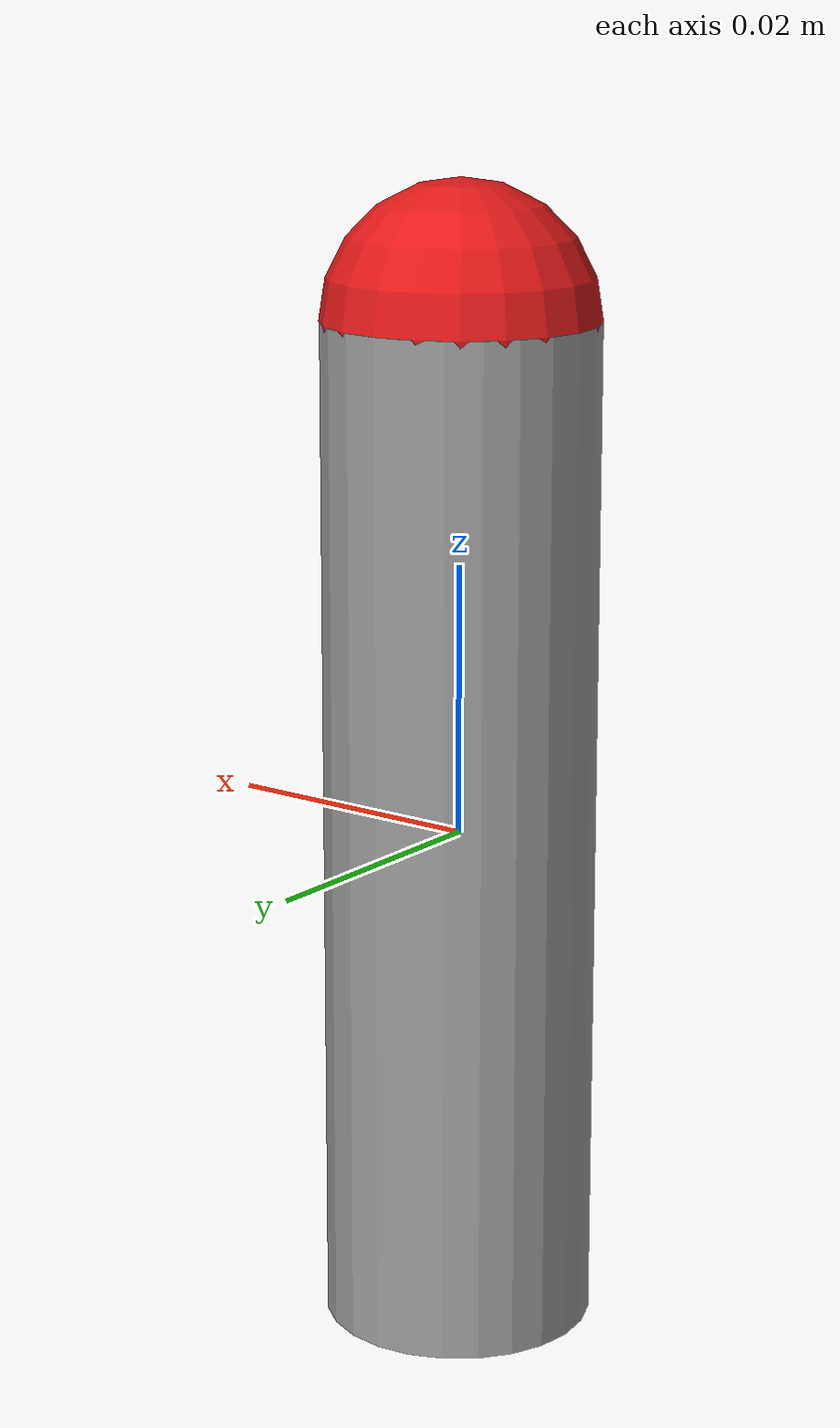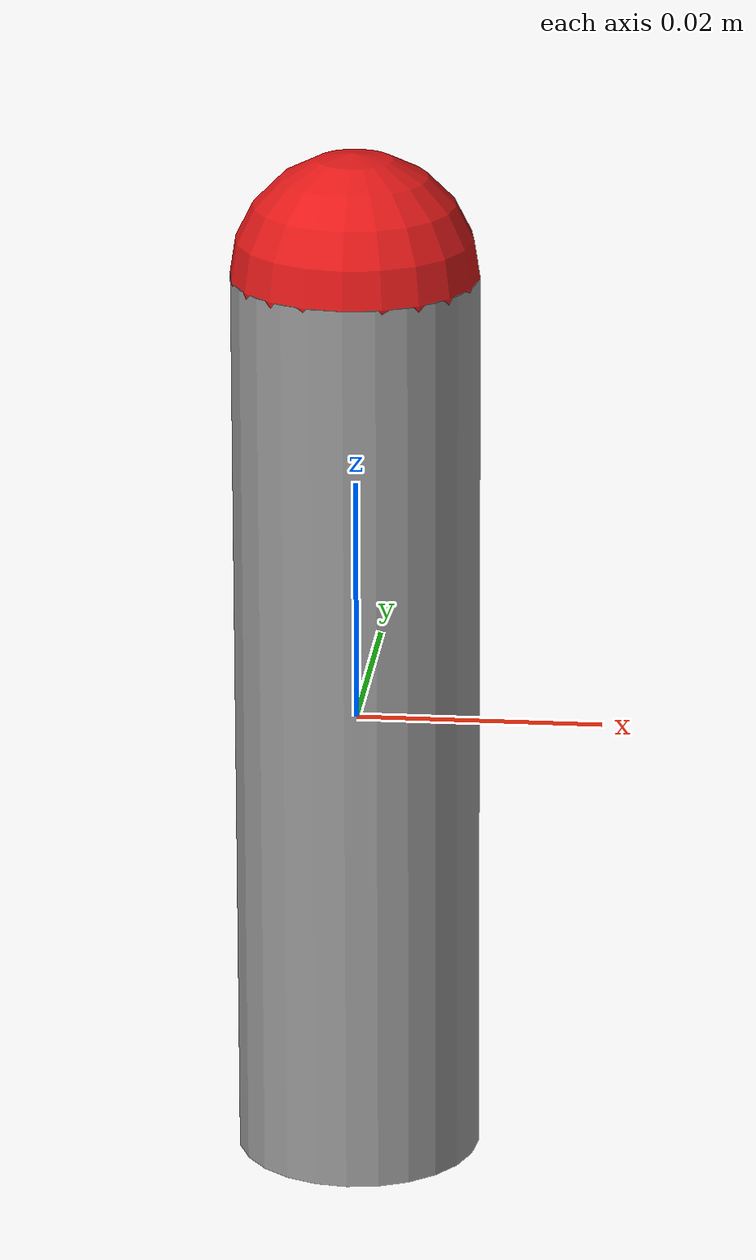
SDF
<?xml version="1.0" ?>
<sdf version="1.7">
  <model name="microscope_mount">
    <static>false</static>

    <!-- Link representing the cylinder -->
    <link name="microscope_cylinder_link">
      <pose>0 0 0 0 0 0</pose>

      <!-- Collision geometry -->
      <collision name="microscope_cylinder_collision">
        <geometry>
          <cylinder>
            <radius>0.01</radius>
            <length>0.075</length>
          </cylinder>
        </geometry>
      </collision>

      <!-- Visual geometry -->
      <visual name="microscope_cylinder_visual">
        <geometry>
          <cylinder>
            <radius>0.01</radius>
            <length>0.075</length>
          </cylinder>
        </geometry>
        <material>
          <ambient>0.6 0.6 0.6 1</ambient>
          <diffuse>0.6 0.6 0.6 1</diffuse>
        </material>
      </visual>

      <!-- Inertia for dynamics (approximate) -->
      <inertial>
        <mass>0.2</mass>
        <inertia>
          <ixx>0.0001</ixx>
          <iyy>0.0001</iyy>
          <izz>0.0001</izz>
          <ixy>0</ixy>
          <ixz>0</ixz>
          <iyz>0</iyz>
        </inertia>
      </inertial>
    </link>

    <!-- Link representing microscope tip -->
    <link name="microscope_tip_link">
      <pose>0 0 0.0375 0 3.14159 0</pose> <!-- tip frame should be same as world when microscope is pointing down -->
      <!-- Collision geometry -->
      <collision name="microscope_tip_collision">
        <geometry>
          <sphere>
            <radius>0.01</radius>
          </sphere>
        </geometry>
      </collision>

      <!-- Visual geometry -->
      <visual name="microscope_tip_visual">
        <geometry>
          <sphere>
            <radius>0.01</radius>
          </sphere>
        </geometry>
        <material>
          <ambient>0.9 0.1 0.1 1</ambient>
          <diffuse>0.9 0.1 0.1 1</diffuse>
        </material>
      </visual>

      <!-- Inertia for dynamics (approximate) -->
      <inertial>
        <mass>0.1</mass>
        <inertia>
          <ixx>0.00005</ixx>
          <iyy>0.00005</iyy>
          <izz>0.00005</izz>
          <ixy>0</ixy>
          <ixz>0</ixz>
          <iyz>0</iyz>
        </inertia>
      </inertial>
    </link>

    <joint name="fixed_tip" type="fixed">
      <parent>microscope_cylinder_link</parent>
      <child>microscope_tip_link</child>
    </joint>
  </model>
</sdf>
